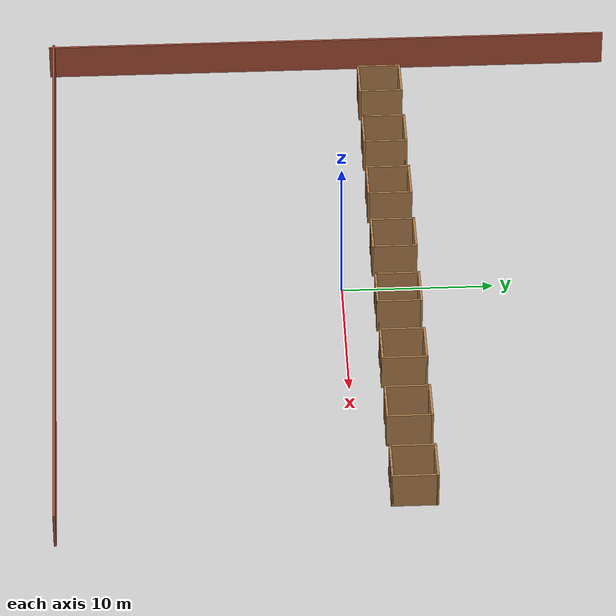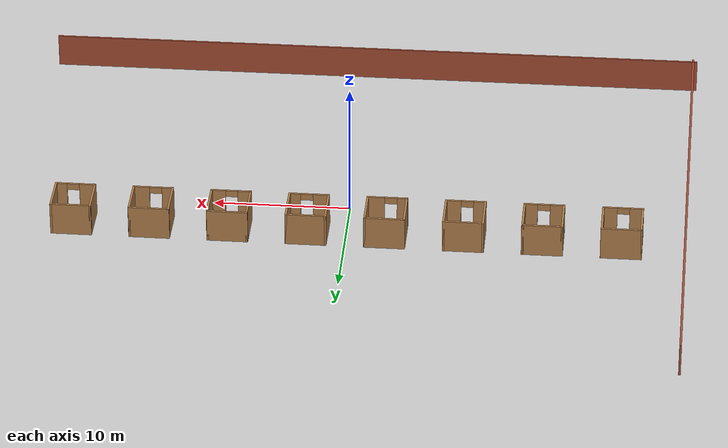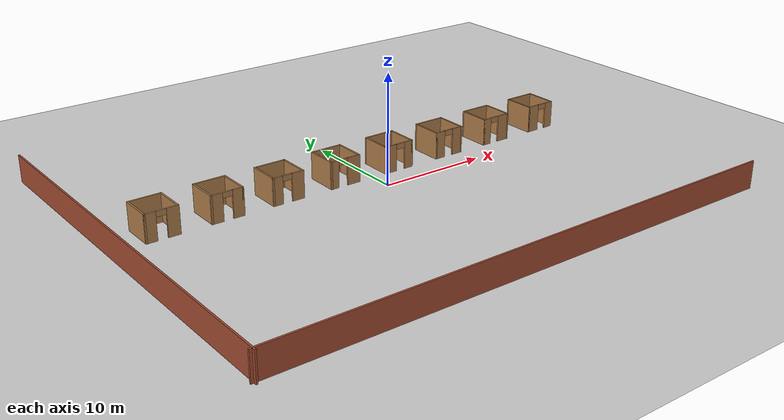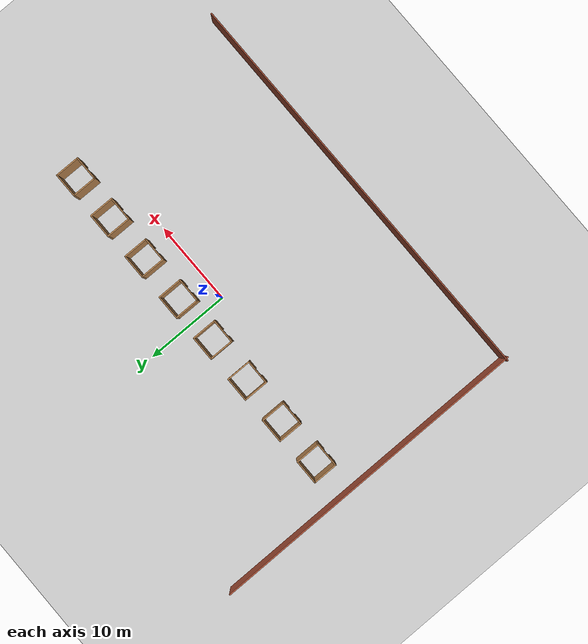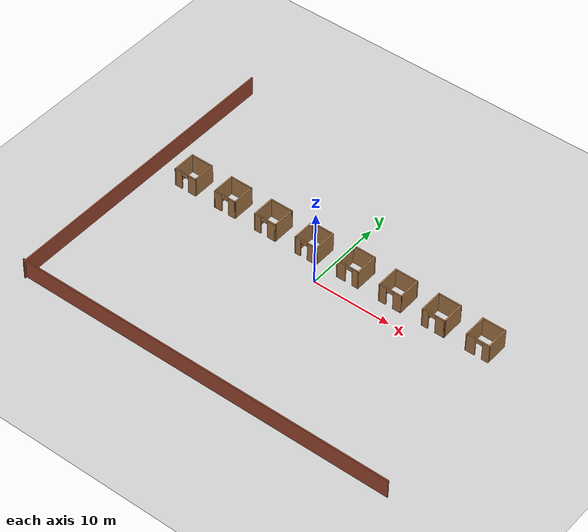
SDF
<sdf version="1.6">
 <world name="default">
  <model name="ground_plane">
   <static>1</static>
   <link name="link">
    <collision name="collision">
     <geometry><plane><normal>0 0 1</normal><size>100 100</size></plane></geometry>
     <surface>
      <contact><collide_bitmask>65535</collide_bitmask></contact>
      <friction><ode><mu>100</mu><mu2>50</mu2></ode></friction>
     </surface>
    </collision>
    <visual name="visual">
     <cast_shadows>0</cast_shadows>
     <geometry><plane><normal>0 0 1</normal><size>100 100</size></plane></geometry>
     <material>
      <script><uri>file://media/materials/scripts/gazebo.material</uri><name>Gazebo/Grey</name></script>
     </material>
    </visual>
   </link>
  </model>
  <model name="room_row_clone_clone_0">
   <pose>-0.049292 3.57608 0 0 -0 3.14</pose>
   <link name="Wall_11">
    <collision name="Wall_11_Collision">
     <geometry><box><size>3 0.15 2.5</size></box></geometry>
     <pose>0 0 1.25 0 -0 0</pose>
    </collision>
    <visual name="Wall_11_Visual">
     <pose>0 0 1.25 0 -0 0</pose>
     <geometry><box><size>3 0.15 2.5</size></box></geometry>
     <material>
      <script><uri>file://media/materials/scripts/gazebo.material</uri><name>Gazebo/Wood</name></script>
      <ambient>1 1 1 1</ambient>
     </material>
     <meta><layer>0</layer></meta>
    </visual>
    <pose>1.425 0 0 0 -0 -1.5708</pose>
   </link>
   <link name="Wall_12">
    <collision name="Wall_12_Collision">
     <geometry><box><size>3 0.15 2.5</size></box></geometry>
     <pose>0 0 1.25 0 -0 0</pose>
    </collision>
    <visual name="Wall_12_Visual">
     <pose>0 0 1.25 0 -0 0</pose>
     <geometry><box><size>3 0.15 2.5</size></box></geometry>
     <material>
      <script><uri>file://media/materials/scripts/gazebo.material</uri><name>Gazebo/Wood</name></script>
      <ambient>1 1 1 1</ambient>
     </material>
     <meta><layer>0</layer></meta>
    </visual>
    <pose>2.85 -1.425 0 0 -0 0</pose>
   </link>
   <link name="Wall_13">
    <collision name="Wall_13_Collision">
     <geometry><box><size>3 0.15 2.5</size></box></geometry>
     <pose>0 0 1.25 0 -0 0</pose>
    </collision>
    <visual name="Wall_13_Visual">
     <pose>0 0 1.25 0 -0 0</pose>
     <geometry><box><size>3 0.15 2.5</size></box></geometry>
     <material>
      <script><uri>file://media/materials/scripts/gazebo.material</uri><name>Gazebo/Wood</name></script>
      <ambient>1 1 1 1</ambient>
     </material>
     <meta><layer>0</layer></meta>
    </visual>
    <pose>4.275 0 0 0 -0 1.5708</pose>
   </link>
   <link name="Wall_14">
    <pose>2.85 1.425 0 0 -0 3.14159</pose>
    <visual name="Wall_14_Visual_0">
     <pose>-1.10207 0 1.25 0 -0 0</pose>
     <geometry><box><size>0.795857 0.15 2.5</size></box></geometry>
     <material>
      <script><uri>file://media/materials/scripts/gazebo.material</uri><name>Gazebo/Wood</name></script>
      <ambient>1 1 1 1</ambient>
     </material>
     <meta><layer>0</layer></meta>
    </visual>
    <collision name="Wall_14_Collision_0">
     <geometry><box><size>0.795857 0.15 2.5</size></box></geometry>
     <pose>-1.10207 0 1.25 0 -0 0</pose>
    </collision>
    <visual name="Wall_14_Visual_1">
     <pose>0.847928 0 1.25 0 -0 0</pose>
     <geometry><box><size>1.30414 0.15 2.5</size></box></geometry>
     <material>
      <script><uri>file://media/materials/scripts/gazebo.material</uri><name>Gazebo/Wood</name></script>
      <ambient>1 1 1 1</ambient>
     </material>
     <meta><layer>0</layer></meta>
    </visual>
    <collision name="Wall_14_Collision_1">
     <geometry><box><size>1.30414 0.15 2.5</size></box></geometry>
     <pose>0.847928 0 1.25 0 -0 0</pose>
    </collision>
    <visual name="Wall_14_Visual_2">
     <pose>-0.254143 0 2.25 0 -0 0</pose>
     <geometry><box><size>0.9 0.15 0.5</size></box></geometry>
     <material>
      <script><uri>file://media/materials/scripts/gazebo.material</uri><name>Gazebo/Wood</name></script>
      <ambient>1 1 1 1</ambient>
     </material>
     <meta><layer>0</layer></meta>
    </visual>
    <collision name="Wall_14_Collision_2">
     <geometry><box><size>0.9 0.15 0.5</size></box></geometry>
     <pose>-0.254143 0 2.25 0 -0 0</pose>
    </collision>
   </link>
   <link name="Wall_17">
    <collision name="Wall_17_Collision">
     <geometry><box><size>3 0.15 2.5</size></box></geometry>
     <pose>0 0 1.25 0 -0 0</pose>
    </collision>
    <visual name="Wall_17_Visual">
     <pose>0 0 1.25 0 -0 0</pose>
     <geometry><box><size>3 0.15 2.5</size></box></geometry>
     <material>
      <script><uri>file://media/materials/scripts/gazebo.material</uri><name>Gazebo/Wood</name></script>
      <ambient>1 1 1 1</ambient>
     </material>
     <meta><layer>0</layer></meta>
    </visual>
    <pose>7.125 0 0 0 -0 -1.5708</pose>
   </link>
   <link name="Wall_18">
    <collision name="Wall_18_Collision">
     <geometry><box><size>3 0.15 2.5</size></box></geometry>
     <pose>0 0 1.25 0 -0 0</pose>
    </collision>
    <visual name="Wall_18_Visual">
     <pose>0 0 1.25 0 -0 0</pose>
     <geometry><box><size>3 0.15 2.5</size></box></geometry>
     <material>
      <script><uri>file://media/materials/scripts/gazebo.material</uri><name>Gazebo/Wood</name></script>
      <ambient>1 1 1 1</ambient>
     </material>
     <meta><layer>0</layer></meta>
    </visual>
    <pose>8.55 -1.425 0 0 -0 0</pose>
   </link>
   <link name="Wall_19">
    <collision name="Wall_19_Collision">
     <geometry><box><size>3 0.15 2.5</size></box></geometry>
     <pose>0 0 1.25 0 -0 0</pose>
    </collision>
    <visual name="Wall_19_Visual">
     <pose>0 0 1.25 0 -0 0</pose>
     <geometry><box><size>3 0.15 2.5</size></box></geometry>
     <material>
      <script><uri>file://media/materials/scripts/gazebo.material</uri><name>Gazebo/Wood</name></script>
      <ambient>1 1 1 1</ambient>
     </material>
     <meta><layer>0</layer></meta>
    </visual>
    <pose>9.975 0 0 0 -0 1.5708</pose>
   </link>
   <link name="Wall_20">
    <pose>8.55 1.425 0 0 -0 3.14159</pose>
    <visual name="Wall_20_Visual_0">
     <pose>-1.03119 0 1.25 0 -0 0</pose>
     <geometry><box><size>0.937612 0.15 2.5</size></box></geometry>
     <material>
      <script><uri>file://media/materials/scripts/gazebo.material</uri><name>Gazebo/Wood</name></script>
      <ambient>1 1 1 1</ambient>
     </material>
     <meta><layer>0</layer></meta>
    </visual>
    <collision name="Wall_20_Collision_0">
     <geometry><box><size>0.937612 0.15 2.5</size></box></geometry>
     <pose>-1.03119 0 1.25 0 -0 0</pose>
    </collision>
    <visual name="Wall_20_Visual_1">
     <pose>0.918806 0 1.25 0 -0 0</pose>
     <geometry><box><size>1.16239 0.15 2.5</size></box></geometry>
     <material>
      <script><uri>file://media/materials/scripts/gazebo.material</uri><name>Gazebo/Wood</name></script>
      <ambient>1 1 1 1</ambient>
     </material>
     <meta><layer>0</layer></meta>
    </visual>
    <collision name="Wall_20_Collision_1">
     <geometry><box><size>1.16239 0.15 2.5</size></box></geometry>
     <pose>0.918806 0 1.25 0 -0 0</pose>
    </collision>
    <visual name="Wall_20_Visual_2">
     <pose>-0.112388 0 2.25 0 -0 0</pose>
     <geometry><box><size>0.9 0.15 0.5</size></box></geometry>
     <material>
      <script><uri>file://media/materials/scripts/gazebo.material</uri><name>Gazebo/Wood</name></script>
      <ambient>1 1 1 1</ambient>
     </material>
     <meta><layer>0</layer></meta>
    </visual>
    <collision name="Wall_20_Collision_2">
     <geometry><box><size>0.9 0.15 0.5</size></box></geometry>
     <pose>-0.112388 0 2.25 0 -0 0</pose>
    </collision>
   </link>
   <link name="Wall_23">
    <collision name="Wall_23_Collision">
     <geometry><box><size>3 0.15 2.5</size></box></geometry>
     <pose>0 0 1.25 0 -0 0</pose>
    </collision>
    <visual name="Wall_23_Visual">
     <pose>0 0 1.25 0 -0 0</pose>
     <geometry><box><size>3 0.15 2.5</size></box></geometry>
     <material>
      <script><uri>file://media/materials/scripts/gazebo.material</uri><name>Gazebo/Wood</name></script>
      <ambient>1 1 1 1</ambient>
     </material>
     <meta><layer>0</layer></meta>
    </visual>
    <pose>-7.125 0 0 0 -0 -1.5708</pose>
   </link>
   <link name="Wall_24">
    <collision name="Wall_24_Collision">
     <geometry><box><size>3 0.15 2.5</size></box></geometry>
     <pose>0 0 1.25 0 -0 0</pose>
    </collision>
    <visual name="Wall_24_Visual">
     <pose>0 0 1.25 0 -0 0</pose>
     <geometry><box><size>3 0.15 2.5</size></box></geometry>
     <material>
      <script><uri>file://media/materials/scripts/gazebo.material</uri><name>Gazebo/Wood</name></script>
      <ambient>1 1 1 1</ambient>
     </material>
     <meta><layer>0</layer></meta>
    </visual>
    <pose>-8.55 -1.425 0 0 -0 3.14159</pose>
   </link>
   <link name="Wall_25">
    <collision name="Wall_25_Collision">
     <geometry><box><size>3 0.15 2.5</size></box></geometry>
     <pose>0 0 1.25 0 -0 0</pose>
    </collision>
    <visual name="Wall_25_Visual">
     <pose>0 0 1.25 0 -0 0</pose>
     <geometry><box><size>3 0.15 2.5</size></box></geometry>
     <material>
      <script><uri>file://media/materials/scripts/gazebo.material</uri><name>Gazebo/Wood</name></script>
      <ambient>1 1 1 1</ambient>
     </material>
     <meta><layer>0</layer></meta>
    </visual>
    <pose>-9.975 0 0 0 -0 1.5708</pose>
   </link>
   <link name="Wall_26">
    <pose>-8.55 1.425 0 0 -0 0</pose>
    <visual name="Wall_26_Visual_0">
     <pose>-0.952424 0 1.25 0 -0 0</pose>
     <geometry><box><size>1.09515 0.15 2.5</size></box></geometry>
     <material>
      <script><uri>file://media/materials/scripts/gazebo.material</uri><name>Gazebo/Wood</name></script>
      <ambient>1 1 1 1</ambient>
     </material>
     <meta><layer>0</layer></meta>
    </visual>
    <collision name="Wall_26_Collision_0">
     <geometry><box><size>1.09515 0.15 2.5</size></box></geometry>
     <pose>-0.952424 0 1.25 0 -0 0</pose>
    </collision>
    <visual name="Wall_26_Visual_1">
     <pose>0.997576 0 1.25 0 -0 0</pose>
     <geometry><box><size>1.00485 0.15 2.5</size></box></geometry>
     <material>
      <script><uri>file://media/materials/scripts/gazebo.material</uri><name>Gazebo/Wood</name></script>
      <ambient>1 1 1 1</ambient>
     </material>
     <meta><layer>0</layer></meta>
    </visual>
    <collision name="Wall_26_Collision_1">
     <geometry><box><size>1.00485 0.15 2.5</size></box></geometry>
     <pose>0.997576 0 1.25 0 -0 0</pose>
    </collision>
    <visual name="Wall_26_Visual_2">
     <pose>0.045152 0 2.25 0 -0 0</pose>
     <geometry><box><size>0.9 0.15 0.5</size></box></geometry>
     <material>
      <script><uri>file://media/materials/scripts/gazebo.material</uri><name>Gazebo/Wood</name></script>
      <ambient>1 1 1 1</ambient>
     </material>
     <meta><layer>0</layer></meta>
    </visual>
    <collision name="Wall_26_Collision_2">
     <geometry><box><size>0.9 0.15 0.5</size></box></geometry>
     <pose>0.045152 0 2.25 0 -0 0</pose>
    </collision>
   </link>
   <link name="Wall_29">
    <collision name="Wall_29_Collision">
     <geometry><box><size>3 0.15 2.5</size></box></geometry>
     <pose>0 0 1.25 0 -0 0</pose>
    </collision>
    <visual name="Wall_29_Visual">
     <pose>0 0 1.25 0 -0 0</pose>
     <geometry><box><size>3 0.15 2.5</size></box></geometry>
     <material>
      <script><uri>file://media/materials/scripts/gazebo.material</uri><name>Gazebo/Wood</name></script>
      <ambient>1 1 1 1</ambient>
     </material>
     <meta><layer>0</layer></meta>
    </visual>
    <pose>-12.825 0 0 0 -0 -1.5708</pose>
   </link>
   <link name="Wall_30">
    <collision name="Wall_30_Collision">
     <geometry><box><size>3 0.15 2.5</size></box></geometry>
     <pose>0 0 1.25 0 -0 0</pose>
    </collision>
    <visual name="Wall_30_Visual">
     <pose>0 0 1.25 0 -0 0</pose>
     <geometry><box><size>3 0.15 2.5</size></box></geometry>
     <material>
      <script><uri>file://media/materials/scripts/gazebo.material</uri><name>Gazebo/Wood</name></script>
      <ambient>1 1 1 1</ambient>
     </material>
     <meta><layer>0</layer></meta>
    </visual>
    <pose>-14.25 -1.425 0 0 -0 3.14159</pose>
   </link>
   <link name="Wall_31">
    <collision name="Wall_31_Collision">
     <geometry><box><size>3 0.15 2.5</size></box></geometry>
     <pose>0 0 1.25 0 -0 0</pose>
    </collision>
    <visual name="Wall_31_Visual">
     <pose>0 0 1.25 0 -0 0</pose>
     <geometry><box><size>3 0.15 2.5</size></box></geometry>
     <material>
      <script><uri>file://media/materials/scripts/gazebo.material</uri><name>Gazebo/Wood</name></script>
      <ambient>1 1 1 1</ambient>
     </material>
     <meta><layer>0</layer></meta>
    </visual>
    <pose>-15.675 0 0 0 -0 1.5708</pose>
   </link>
   <link name="Wall_32">
    <pose>-14.25 1.425 0 0 -0 0</pose>
    <visual name="Wall_32_Visual_0">
     <pose>-0.881547 0 1.25 0 -0 0</pose>
     <geometry><box><size>1.23691 0.15 2.5</size></box></geometry>
     <material>
      <script><uri>file://media/materials/scripts/gazebo.material</uri><name>Gazebo/Wood</name></script>
      <ambient>1 1 1 1</ambient>
     </material>
     <meta><layer>0</layer></meta>
    </visual>
    <collision name="Wall_32_Collision_0">
     <geometry><box><size>1.23691 0.15 2.5</size></box></geometry>
     <pose>-0.881547 0 1.25 0 -0 0</pose>
    </collision>
    <visual name="Wall_32_Visual_1">
     <pose>1.06845 0 1.25 0 -0 0</pose>
     <geometry><box><size>0.863093 0.15 2.5</size></box></geometry>
     <material>
      <script><uri>file://media/materials/scripts/gazebo.material</uri><name>Gazebo/Wood</name></script>
      <ambient>1 1 1 1</ambient>
     </material>
     <meta><layer>0</layer></meta>
    </visual>
    <collision name="Wall_32_Collision_1">
     <geometry><box><size>0.863093 0.15 2.5</size></box></geometry>
     <pose>1.06845 0 1.25 0 -0 0</pose>
    </collision>
    <visual name="Wall_32_Visual_2">
     <pose>0.186907 0 2.25 0 -0 0</pose>
     <geometry><box><size>0.9 0.15 0.5</size></box></geometry>
     <material>
      <script><uri>file://media/materials/scripts/gazebo.material</uri><name>Gazebo/Wood</name></script>
      <ambient>1 1 1 1</ambient>
     </material>
     <meta><layer>0</layer></meta>
    </visual>
    <collision name="Wall_32_Collision_2">
     <geometry><box><size>0.9 0.15 0.5</size></box></geometry>
     <pose>0.186907 0 2.25 0 -0 0</pose>
    </collision>
   </link>
   <link name="Wall_35">
    <collision name="Wall_35_Collision">
     <geometry><box><size>3 0.15 2.5</size></box></geometry>
     <pose>0 0 1.25 0 -0 0</pose>
    </collision>
    <visual name="Wall_35_Visual">
     <pose>0 0 1.25 0 -0 0</pose>
     <geometry><box><size>3 0.15 2.5</size></box></geometry>
     <material>
      <script><uri>file://media/materials/scripts/gazebo.material</uri><name>Gazebo/Wood</name></script>
      <ambient>1 1 1 1</ambient>
     </material>
     <meta><layer>0</layer></meta>
    </visual>
    <pose>12.825 0 0 0 -0 -1.5708</pose>
   </link>
   <link name="Wall_36">
    <collision name="Wall_36_Collision">
     <geometry><box><size>3 0.15 2.5</size></box></geometry>
     <pose>0 0 1.25 0 -0 0</pose>
    </collision>
    <visual name="Wall_36_Visual">
     <pose>0 0 1.25 0 -0 0</pose>
     <geometry><box><size>3 0.15 2.5</size></box></geometry>
     <material>
      <script><uri>file://media/materials/scripts/gazebo.material</uri><name>Gazebo/Wood</name></script>
      <ambient>1 1 1 1</ambient>
     </material>
     <meta><layer>0</layer></meta>
    </visual>
    <pose>14.25 -1.425 0 0 -0 0</pose>
   </link>
   <link name="Wall_37">
    <collision name="Wall_37_Collision">
     <geometry><box><size>3 0.15 2.5</size></box></geometry>
     <pose>0 0 1.25 0 -0 0</pose>
    </collision>
    <visual name="Wall_37_Visual">
     <pose>0 0 1.25 0 -0 0</pose>
     <geometry><box><size>3 0.15 2.5</size></box></geometry>
     <material>
      <script><uri>file://media/materials/scripts/gazebo.material</uri><name>Gazebo/Wood</name></script>
      <ambient>1 1 1 1</ambient>
     </material>
     <meta><layer>0</layer></meta>
    </visual>
    <pose>15.675 0 0 0 -0 1.5708</pose>
   </link>
   <link name="Wall_38">
    <pose>14.25 1.425 0 0 -0 3.14159</pose>
    <visual name="Wall_38_Visual_0">
     <pose>-0.960316 0 1.25 0 -0 0</pose>
     <geometry><box><size>1.07937 0.15 2.5</size></box></geometry>
     <material>
      <script><uri>file://media/materials/scripts/gazebo.material</uri><name>Gazebo/Wood</name></script>
      <ambient>1 1 1 1</ambient>
     </material>
     <meta><layer>0</layer></meta>
    </visual>
    <collision name="Wall_38_Collision_0">
     <geometry><box><size>1.07937 0.15 2.5</size></box></geometry>
     <pose>-0.960316 0 1.25 0 -0 0</pose>
    </collision>
    <visual name="Wall_38_Visual_1">
     <pose>0.989684 0 1.25 0 -0 0</pose>
     <geometry><box><size>1.02063 0.15 2.5</size></box></geometry>
     <material>
      <script><uri>file://media/materials/scripts/gazebo.material</uri><name>Gazebo/Wood</name></script>
      <ambient>1 1 1 1</ambient>
     </material>
     <meta><layer>0</layer></meta>
    </visual>
    <collision name="Wall_38_Collision_1">
     <geometry><box><size>1.02063 0.15 2.5</size></box></geometry>
     <pose>0.989684 0 1.25 0 -0 0</pose>
    </collision>
    <visual name="Wall_38_Visual_2">
     <pose>0.029367 0 2.25 0 -0 0</pose>
     <geometry><box><size>0.9 0.15 0.5</size></box></geometry>
     <material>
      <script><uri>file://media/materials/scripts/gazebo.material</uri><name>Gazebo/Wood</name></script>
      <ambient>1 1 1 1</ambient>
     </material>
     <meta><layer>0</layer></meta>
    </visual>
    <collision name="Wall_38_Collision_2">
     <geometry><box><size>0.9 0.15 0.5</size></box></geometry>
     <pose>0.029367 0 2.25 0 -0 0</pose>
    </collision>
   </link>
   <link name="Wall_41">
    <collision name="Wall_41_Collision">
     <geometry><box><size>3 0.15 2.5</size></box></geometry>
     <pose>0 0 1.25 0 -0 0</pose>
    </collision>
    <visual name="Wall_41_Visual">
     <pose>0 0 1.25 0 -0 0</pose>
     <geometry><box><size>3 0.15 2.5</size></box></geometry>
     <material>
      <script><uri>file://media/materials/scripts/gazebo.material</uri><name>Gazebo/Wood</name></script>
      <ambient>1 1 1 1</ambient>
     </material>
     <meta><layer>0</layer></meta>
    </visual>
    <pose>-18.525 0 0 0 -0 -1.5708</pose>
   </link>
   <link name="Wall_42">
    <collision name="Wall_42_Collision">
     <geometry><box><size>3 0.15 2.5</size></box></geometry>
     <pose>0 0 1.25 0 -0 0</pose>
    </collision>
    <visual name="Wall_42_Visual">
     <pose>0 0 1.25 0 -0 0</pose>
     <geometry><box><size>3 0.15 2.5</size></box></geometry>
     <material>
      <script><uri>file://media/materials/scripts/gazebo.material</uri><name>Gazebo/Wood</name></script>
      <ambient>1 1 1 1</ambient>
     </material>
     <meta><layer>0</layer></meta>
    </visual>
    <pose>-19.95 -1.425 0 0 -0 3.14159</pose>
   </link>
   <link name="Wall_45">
    <pose>-19.95 1.425 0 0 -0 3.14159</pose>
    <visual name="Wall_45_Visual_0">
     <pose>-0.89308 0 1.25 0 -0 0</pose>
     <geometry><box><size>1.21384 0.15 2.5</size></box></geometry>
     <material>
      <script><uri>file://media/materials/scripts/gazebo.material</uri><name>Gazebo/Wood</name></script>
      <ambient>1 1 1 1</ambient>
     </material>
     <meta><layer>0</layer></meta>
    </visual>
    <collision name="Wall_45_Collision_0">
     <geometry><box><size>1.21384 0.15 2.5</size></box></geometry>
     <pose>-0.89308 0 1.25 0 -0 0</pose>
    </collision>
    <visual name="Wall_45_Visual_1">
     <pose>1.05692 0 1.25 0 -0 0</pose>
     <geometry><box><size>0.886161 0.15 2.5</size></box></geometry>
     <material>
      <script><uri>file://media/materials/scripts/gazebo.material</uri><name>Gazebo/Wood</name></script>
      <ambient>1 1 1 1</ambient>
     </material>
     <meta><layer>0</layer></meta>
    </visual>
    <collision name="Wall_45_Collision_1">
     <geometry><box><size>0.886161 0.15 2.5</size></box></geometry>
     <pose>1.05692 0 1.25 0 -0 0</pose>
    </collision>
    <visual name="Wall_45_Visual_2">
     <pose>0.163839 0 2.25 0 -0 0</pose>
     <geometry><box><size>0.9 0.15 0.5</size></box></geometry>
     <material>
      <script><uri>file://media/materials/scripts/gazebo.material</uri><name>Gazebo/Wood</name></script>
      <ambient>1 1 1 1</ambient>
     </material>
     <meta><layer>0</layer></meta>
    </visual>
    <collision name="Wall_45_Collision_2">
     <geometry><box><size>0.9 0.15 0.5</size></box></geometry>
     <pose>0.163839 0 2.25 0 -0 0</pose>
    </collision>
   </link>
   <link name="Wall_46">
    <collision name="Wall_46_Collision">
     <geometry><box><size>3 0.15 2.5</size></box></geometry>
     <pose>0 0 1.25 0 -0 0</pose>
    </collision>
    <visual name="Wall_46_Visual">
     <pose>0 0 1.25 0 -0 0</pose>
     <geometry><box><size>3 0.15 2.5</size></box></geometry>
     <material>
      <script><uri>file://media/materials/scripts/gazebo.material</uri><name>Gazebo/Wood</name></script>
      <ambient>1 1 1 1</ambient>
     </material>
     <meta><layer>0</layer></meta>
    </visual>
    <pose>-21.375 0 0 0 -0 -1.5708</pose>
   </link>
   <link name="Wall_49">
    <collision name="Wall_49_Collision">
     <geometry><box><size>3 0.15 2.5</size></box></geometry>
     <pose>0 0 1.25 0 -0 0</pose>
    </collision>
    <visual name="Wall_49_Visual">
     <pose>0 0 1.25 0 -0 0</pose>
     <geometry><box><size>3 0.15 2.5</size></box></geometry>
     <material>
      <script><uri>file://media/materials/scripts/gazebo.material</uri><name>Gazebo/Wood</name></script>
      <ambient>1 1 1 1</ambient>
     </material>
     <meta><layer>0</layer></meta>
    </visual>
    <pose>18.525 0 0 0 -0 -1.5708</pose>
   </link>
   <link name="Wall_5">
    <pose>-2.85 1.425 0 0 -0 0</pose>
    <visual name="Wall_5_Visual_0">
     <pose>-1.05848 0 1.25 0 -0 0</pose>
     <geometry><box><size>0.883039 0.15 2.5</size></box></geometry>
     <material>
      <script><uri>file://media/materials/scripts/gazebo.material</uri><name>Gazebo/Wood</name></script>
      <ambient>1 1 1 1</ambient>
     </material>
     <meta><layer>0</layer></meta>
    </visual>
    <collision name="Wall_5_Collision_0">
     <geometry><box><size>0.883039 0.15 2.5</size></box></geometry>
     <pose>-1.05848 0 1.25 0 -0 0</pose>
    </collision>
    <visual name="Wall_5_Visual_1">
     <pose>0.891519 0 1.25 0 -0 0</pose>
     <geometry><box><size>1.21696 0.15 2.5</size></box></geometry>
     <material>
      <script><uri>file://media/materials/scripts/gazebo.material</uri><name>Gazebo/Wood</name></script>
      <ambient>1 1 1 1</ambient>
     </material>
     <meta><layer>0</layer></meta>
    </visual>
    <collision name="Wall_5_Collision_1">
     <geometry><box><size>1.21696 0.15 2.5</size></box></geometry>
     <pose>0.891519 0 1.25 0 -0 0</pose>
    </collision>
    <visual name="Wall_5_Visual_2">
     <pose>-0.166961 0 2.25 0 -0 0</pose>
     <geometry><box><size>0.9 0.15 0.5</size></box></geometry>
     <material>
      <script><uri>file://media/materials/scripts/gazebo.material</uri><name>Gazebo/Wood</name></script>
      <ambient>1 1 1 1</ambient>
     </material>
     <meta><layer>0</layer></meta>
    </visual>
    <collision name="Wall_5_Collision_2">
     <geometry><box><size>0.9 0.15 0.5</size></box></geometry>
     <pose>-0.166961 0 2.25 0 -0 0</pose>
    </collision>
   </link>
   <link name="Wall_51">
    <collision name="Wall_51_Collision">
     <geometry><box><size>3 0.15 2.5</size></box></geometry>
     <pose>0 0 1.25 0 -0 0</pose>
    </collision>
    <visual name="Wall_51_Visual">
     <pose>0 0 1.25 0 -0 0</pose>
     <geometry><box><size>3 0.15 2.5</size></box></geometry>
     <material>
      <script><uri>file://media/materials/scripts/gazebo.material</uri><name>Gazebo/Wood</name></script>
      <ambient>1 1 1 1</ambient>
     </material>
     <meta><layer>0</layer></meta>
    </visual>
    <pose>19.95 -1.425 0 0 -0 0</pose>
   </link>
   <link name="Wall_53">
    <collision name="Wall_53_Collision">
     <geometry><box><size>3 0.15 2.5</size></box></geometry>
     <pose>0 0 1.25 0 -0 0</pose>
    </collision>
    <visual name="Wall_53_Visual">
     <pose>0 0 1.25 0 -0 0</pose>
     <geometry><box><size>3 0.15 2.5</size></box></geometry>
     <material>
      <script><uri>file://media/materials/scripts/gazebo.material</uri><name>Gazebo/Wood</name></script>
      <ambient>1 1 1 1</ambient>
     </material>
     <meta><layer>0</layer></meta>
    </visual>
    <pose>21.375 0 0 0 -0 1.5708</pose>
   </link>
   <link name="Wall_54">
    <pose>19.95 1.425 0 0 -0 3.14159</pose>
    <visual name="Wall_54_Visual_0">
     <pose>-0.994975 0 1.25 0 -0 0</pose>
     <geometry><box><size>1.01005 0.15 2.5</size></box></geometry>
     <material>
      <script><uri>file://media/materials/scripts/gazebo.material</uri><name>Gazebo/Wood</name></script>
      <ambient>1 1 1 1</ambient>
     </material>
     <meta><layer>0</layer></meta>
    </visual>
    <collision name="Wall_54_Collision_0">
     <geometry><box><size>1.01005 0.15 2.5</size></box></geometry>
     <pose>-0.994975 0 1.25 0 -0 0</pose>
    </collision>
    <visual name="Wall_54_Visual_1">
     <pose>0.955025 0 1.25 0 -0 0</pose>
     <geometry><box><size>1.08995 0.15 2.5</size></box></geometry>
     <material>
      <script><uri>file://media/materials/scripts/gazebo.material</uri><name>Gazebo/Wood</name></script>
      <ambient>1 1 1 1</ambient>
     </material>
     <meta><layer>0</layer></meta>
    </visual>
    <collision name="Wall_54_Collision_1">
     <geometry><box><size>1.08995 0.15 2.5</size></box></geometry>
     <pose>0.955025 0 1.25 0 -0 0</pose>
    </collision>
    <visual name="Wall_54_Visual_2">
     <pose>-0.039949 0 2.25 0 -0 0</pose>
     <geometry><box><size>0.9 0.15 0.5</size></box></geometry>
     <material>
      <script><uri>file://media/materials/scripts/gazebo.material</uri><name>Gazebo/Wood</name></script>
      <ambient>1 1 1 1</ambient>
     </material>
     <meta><layer>0</layer></meta>
    </visual>
    <collision name="Wall_54_Collision_2">
     <geometry><box><size>0.9 0.15 0.5</size></box></geometry>
     <pose>-0.039949 0 2.25 0 -0 0</pose>
    </collision>
   </link>
   <link name="Wall_6">
    <collision name="Wall_6_Collision">
     <geometry><box><size>3 0.15 2.5</size></box></geometry>
     <pose>0 0 1.25 0 -0 0</pose>
    </collision>
    <visual name="Wall_6_Visual">
     <pose>0 0 1.25 0 -0 0</pose>
     <geometry><box><size>3 0.15 2.5</size></box></geometry>
     <material>
      <script><uri>file://media/materials/scripts/gazebo.material</uri><name>Gazebo/Wood</name></script>
      <ambient>1 1 1 1</ambient>
     </material>
     <meta><layer>0</layer></meta>
    </visual>
    <pose>-1.425 0 0 0 -0 -1.5708</pose>
   </link>
   <link name="Wall_7">
    <collision name="Wall_7_Collision">
     <geometry><box><size>3 0.15 2.5</size></box></geometry>
     <pose>0 0 1.25 0 -0 0</pose>
    </collision>
    <visual name="Wall_7_Visual">
     <pose>0 0 1.25 0 -0 0</pose>
     <geometry><box><size>3 0.15 2.5</size></box></geometry>
     <material>
      <script><uri>file://media/materials/scripts/gazebo.material</uri><name>Gazebo/Wood</name></script>
      <ambient>1 1 1 1</ambient>
     </material>
     <meta><layer>0</layer></meta>
    </visual>
    <pose>-2.85 -1.425 0 0 -0 3.14159</pose>
   </link>
   <link name="Wall_8">
    <collision name="Wall_8_Collision">
     <geometry><box><size>3 0.15 2.5</size></box></geometry>
     <pose>0 0 1.25 0 -0 0</pose>
    </collision>
    <visual name="Wall_8_Visual">
     <pose>0 0 1.25 0 -0 0</pose>
     <geometry><box><size>3 0.15 2.5</size></box></geometry>
     <material>
      <script><uri>file://media/materials/scripts/gazebo.material</uri><name>Gazebo/Wood</name></script>
      <ambient>1 1 1 1</ambient>
     </material>
     <meta><layer>0</layer></meta>
    </visual>
    <pose>-4.275 0 0 0 -0 1.5708</pose>
   </link>
   <static>1</static>
  </model>
  <model name="wall_vert">
   <link name="Wall_106">
    <pose>0 1e-06 0 0 0 -1.5708</pose>
    <inertial>
     <mass>1</mass>
     <inertia><ixx>1</ixx><ixy>0</ixy><ixz>0</ixz><iyy>1</iyy><iyz>0</iyz><izz>1</izz></inertia>
    </inertial>
    <visual name="Wall_106_Visual">
     <pose>0 0 1.25 0 -0 0</pose>
     <geometry><box><size>38.75 0.15 2.5</size></box></geometry>
     <material>
      <script><uri>file://media/materials/scripts/gazebo.material</uri><name>Gazebo/Bricks</name></script>
      <ambient>1 1 1 1</ambient>
      <shader type="pixel"><normal_map>__default__</normal_map></shader>
      <diffuse>0.7 0.7 0.7 1</diffuse>
      <specular>0.01 0.01 0.01 1</specular>
      <emissive>0 0 0 1</emissive>
     </material>
     <meta><layer>0</layer></meta>
    </visual>
    <collision name="Wall_106_Collision">
     <pose>0 0 1.25 0 -0 0</pose>
     <geometry><box><size>38.75 0.15 2.5</size></box></geometry>
     <surface>
      <friction>
       <ode><mu>1</mu><mu2>1</mu2><fdir1>0 0 0</fdir1><slip1>0</slip1><slip2>0</slip2></ode>
       <torsional>
        <coefficient>1</coefficient>
        <patch_radius>0</patch_radius>
        <surface_radius>0</surface_radius>
        <use_patch_radius>1</use_patch_radius>
        <ode><slip>0</slip></ode>
       </torsional>
      </friction>
      <bounce><restitution_coefficient>0</restitution_coefficient><threshold>1e+06</threshold></bounce>
      <contact>
       <collide_without_contact>0</collide_without_contact>
       <collide_without_contact_bitmask>1</collide_without_contact_bitmask>
       <collide_bitmask>1</collide_bitmask>
       <ode>
        <soft_cfm>0</soft_cfm>
        <soft_erp>0.2</soft_erp>
        <kp>1e+13</kp>
        <kd>1</kd>
        <max_vel>0.01</max_vel>
        <min_depth>0</min_depth>
       </ode>
       <bullet>
        <split_impulse>1</split_impulse>
        <split_impulse_penetration_threshold>-0.01</split_impulse_penetration_threshold>
        <soft_cfm>0</soft_cfm>
        <soft_erp>0.2</soft_erp>
        <kp>1e+13</kp>
        <kd>1</kd>
       </bullet>
      </contact>
     </surface>
    </collision>
   </link>
   <static>1</static>
   <pose>-24.581 0.130111 0 0 -0 0</pose>
  </model>
  <model name="wall_hori_clone">
   <link name="Wall_96">
    <inertial>
     <mass>1</mass>
     <inertia><ixx>1</ixx><ixy>0</ixy><ixz>0</ixz><iyy>1</iyy><iyz>0</iyz><izz>1</izz></inertia>
    </inertial>
    <visual name="Wall_96_Visual">
     <pose>0 0 1.25 0 -0 0</pose>
     <geometry><box><size>49 0.15 2.5</size></box></geometry>
     <material>
      <script><uri>file://media/materials/scripts/gazebo.material</uri><name>Gazebo/Bricks</name></script>
      <ambient>1 1 1 1</ambient>
      <shader type="pixel"><normal_map>__default__</normal_map></shader>
      <diffuse>0.7 0.7 0.7 1</diffuse>
      <specular>0.01 0.01 0.01 1</specular>
      <emissive>0 0 0 1</emissive>
     </material>
     <meta><layer>0</layer></meta>
    </visual>
    <collision name="Wall_96_Collision">
     <pose>0 0 1.25 0 -0 0</pose>
     <geometry><box><size>49 0.15 2.5</size></box></geometry>
     <surface>
      <friction>
       <ode><mu>1</mu><mu2>1</mu2><fdir1>0 0 0</fdir1><slip1>0</slip1><slip2>0</slip2></ode>
       <torsional>
        <coefficient>1</coefficient>
        <patch_radius>0</patch_radius>
        <surface_radius>0</surface_radius>
        <use_patch_radius>1</use_patch_radius>
        <ode><slip>0</slip></ode>
       </torsional>
      </friction>
      <bounce><restitution_coefficient>0</restitution_coefficient><threshold>1e+06</threshold></bounce>
      <contact>
       <collide_without_contact>0</collide_without_contact>
       <collide_without_contact_bitmask>1</collide_without_contact_bitmask>
       <collide_bitmask>1</collide_bitmask>
       <ode>
        <soft_cfm>0</soft_cfm>
        <soft_erp>0.2</soft_erp>
        <kp>1e+13</kp>
        <kd>1</kd>
        <max_vel>0.01</max_vel>
        <min_depth>0</min_depth>
       </ode>
       <bullet>
        <split_impulse>1</split_impulse>
        <split_impulse_penetration_threshold>-0.01</split_impulse_penetration_threshold>
        <soft_cfm>0</soft_cfm>
        <soft_erp>0.2</soft_erp>
        <kp>1e+13</kp>
        <kd>1</kd>
       </bullet>
      </contact>
     </surface>
    </collision>
   </link>
   <static>1</static>
   <pose>-0.390893 -18.9262 0 0 -0 0</pose>
  </model>
 </world>
</sdf>
